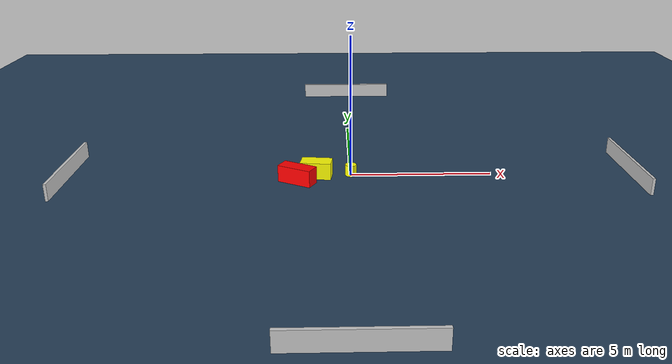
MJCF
<?xml version="1.0" ?>
<mujoco model="generated_environment">
  <option timestep="0.01" integrator="RK4" cone="elliptic"/>
  <default>
    <geom density="1"/>
  </default>
  <asset>
    <texture builtin="gradient" height="3072" name="skybox" rgb1="0.3 0.5 0.7" rgb2="0 0 0" type="skybox" width="512"/>
    <texture builtin="checker" height="300" name="groundplane" rgb1="0.2 0.3 0.4" rgb2="0.1 0.2 0.3" type="2d" width="300"/>
    <material name="groundplane" reflectance="0.2" texrepeat="5 5" texture="groundplane"/>
  </asset>
  <worldbody>
    <light dir="0 0 -1" directional="true" pos="0 0 1.5"/>
    <geom condim="3" friction="0.5 0.005 0.001" material="groundplane" name="floor" pos="0 0 0" size="0 0 0.05" type="plane"/>
    <body name="walls">
      <geom name="wall_1" condim="4" pos="-10.0 0.0 0.3" rgba="0.800000011920929 0.800000011920929 0.800000011920929 1.0" size="0.05 2.0 0.3" type="box"/>
      <geom name="wall_2" condim="4" pos="10.0 0.0 0.3" rgba="0.800000011920929 0.800000011920929 0.800000011920929 1.0" size="0.05 2.0 0.3" type="box"/>
      <geom name="wall_3" condim="4" pos="0.0 -10.0 0.3" rgba="0.800000011920929 0.800000011920929 0.800000011920929 1.0" size="2.0 0.05 0.3" type="box"/>
      <geom name="wall_4" condim="4" pos="0.0 10.0 0.3" rgba="0.800000011920929 0.800000011920929 0.800000011920929 1.0" size="2.0 0.05 0.3" type="box"/>
    </body>
    <body name="robot">
      <joint name="joint_x" type="slide" pos="0 0 0" axis="1 0 0"/>
      <joint name="joint_y" type="slide" pos="0 0 0" axis="0 1 0"/>
      <geom name="robot" type="cylinder" pos="0.0 0.0 0.2" size="0.2 0.2 0.0" mass="5.0" friction="1.0 0.005 0.0001" condim="4" rgba="1.0 1.0 0.0 1.0"/>
    </body>
    <body name="obstacle_1_movable">
      <geom name="obstacle_1_movable" condim="4" pos="-1.2210862345288036 -0.1017266424968545 0.3" euler="0 0 262.85823686951795" friction="0.0 0.005 0.001" rgba="1.0 1.0 0.0 1.0" size="0.30023011872618455 0.5424928980413777 0.3" type="box" mass="0.1"/>
      <joint type="free"/>
    </body>
    <body name="obstacle_2_static">
      <geom name="obstacle_2_static" condim="4" pos="-1.8766531269020092 -0.6005515410954871 0.3" euler="0 0 241.86600257449084" friction="0.0 0.005 0.001" rgba="1.0 0.0 0.0 1.0" size="0.25606064166688114 0.630638824468599 0.3" type="box"/>
    </body>
  </worldbody>
  <actuator>
    <motor name="actuator_x" joint="joint_x" gear="1" ctrlrange="-1 1"/>
    <motor name="actuator_y" joint="joint_y" gear="1" ctrlrange="-1 1"/>
  </actuator>
</mujoco>
